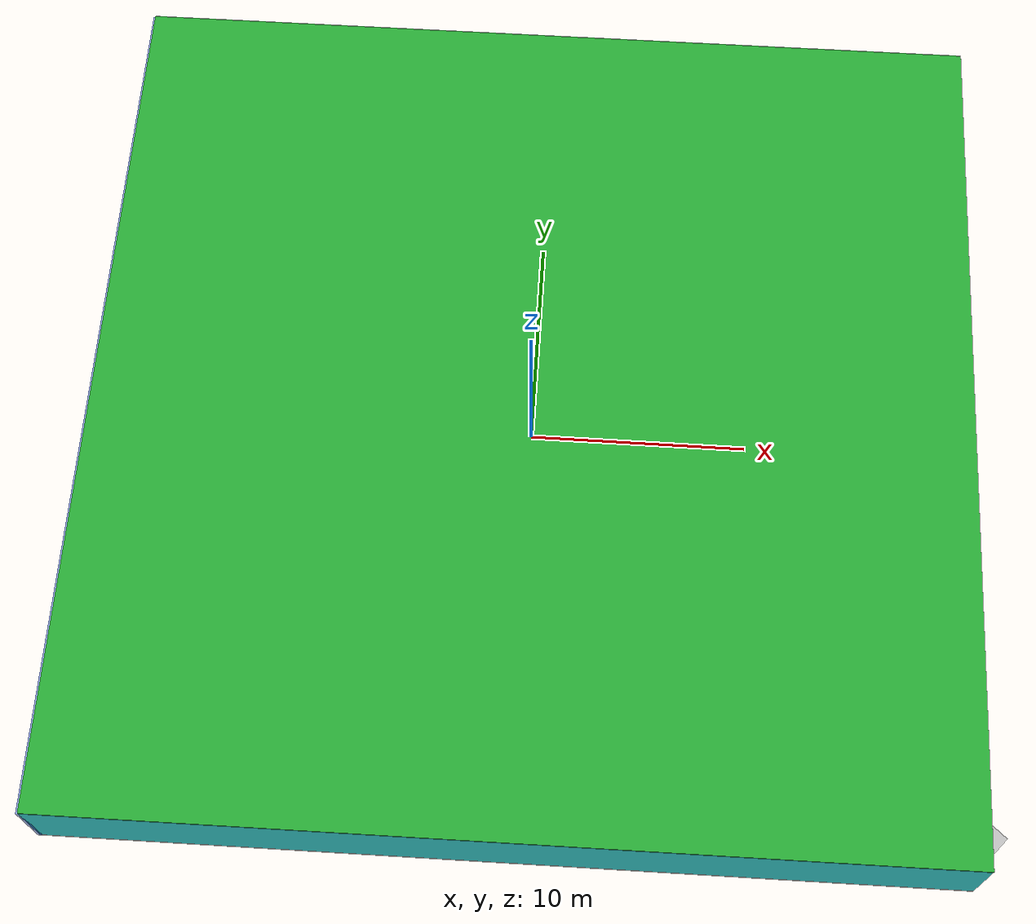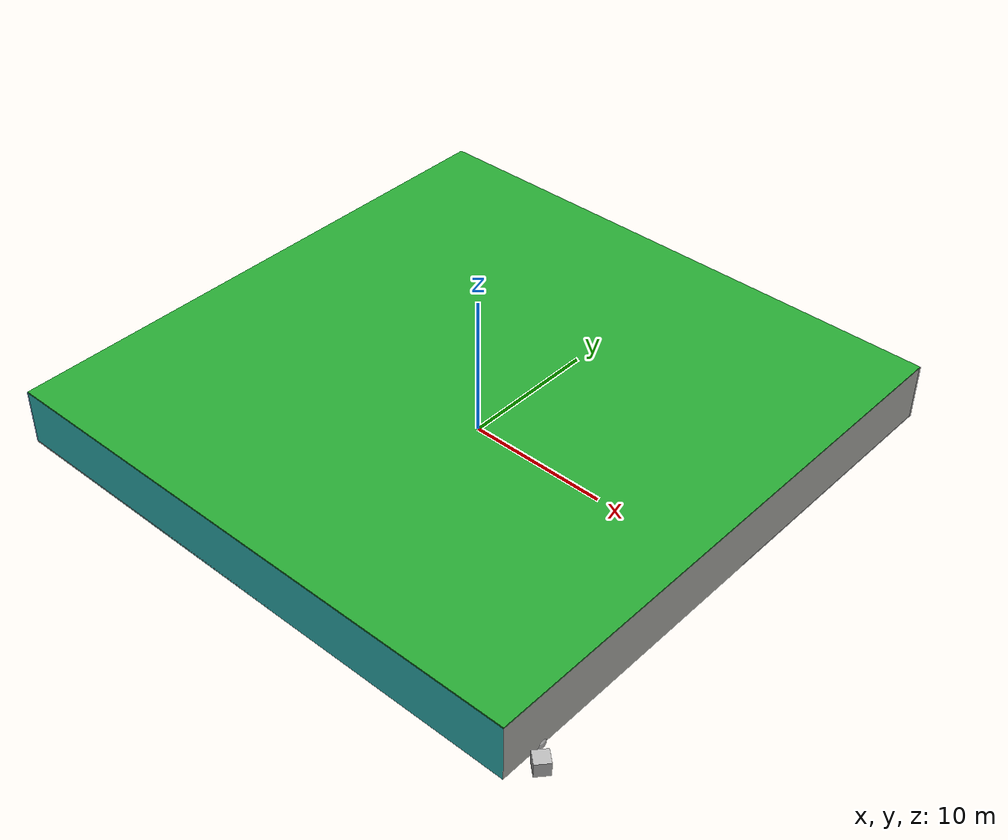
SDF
<sdf version="1.4">
 <world name="default">
  <physics type="ode">
   <max_step_size>0.001</max_step_size>
   <real_time_factor>1</real_time_factor>
   <real_time_update_rate>1000</real_time_update_rate>
   <gravity>0 0 -9.8</gravity>
  </physics>
  <scene><ambient>0.4 0.4 0.4 1</ambient><background>0.7 0.7 0.7 1</background><shadows>1</shadows></scene>
  <model name="Surrounding">
   <static>1</static>
   <link name="Ceiling">
    <collision name="Ceiling_Collision"><geometry><box><size>40 40 0.1</size></box></geometry></collision>
    <visual name="Ceiling_Visual">
     <geometry><box><size>40 40 0.1</size></box></geometry>
     <material>
      <script><uri>file://media/materials/scripts/gazebo.material</uri><name>Gazebo/GreenGlow</name></script>
     </material>
    </visual>
    <pose>0 0 4.05 0 0 0</pose>
   </link>
   <link name="Wall_South">
    <collision name="Wall_South_Collision">
     <geometry><box><size>40 0 4</size></box></geometry>
     <pose>0 0 2 0 -0 0</pose>
    </collision>
    <visual name="Wall_South_Visual">
     <pose>0 0 2 0 -0 0</pose>
     <geometry><box><size>40 0 4</size></box></geometry>
     <material>
      <script><uri>file://media/materials/scripts/gazebo.material</uri><name>Gazebo/TurquoiseGlow</name></script>
     </material>
    </visual>
    <velocity_decay><linear>0</linear><angular>0</angular></velocity_decay>
    <pose>0 -20 0 0 -0 0</pose>
   </link>
   <link name="Wall_East">
    <collision name="Wall_21_Collision">
     <geometry><box><size>40 0 4</size></box></geometry>
     <pose>0 0 2 0 -0 0</pose>
    </collision>
    <visual name="Wall_21_Visual">
     <pose>0 0 2 0 -0 0</pose>
     <geometry><box><size>40 0 4</size></box></geometry>
     <material>
      <script><uri>file://media/materials/scripts/gazebo.material</uri><name>Gazebo/CeilingTiled</name></script>
     </material>
    </visual>
    <velocity_decay><linear>0</linear><angular>0</angular></velocity_decay>
    <pose>20 0 0 0 -0 1.5708</pose>
   </link>
   <link name="Wall_North">
    <collision name="Wall_22_Collision">
     <geometry><box><size>40 0.2 4</size></box></geometry>
     <pose>0 0 2 0 -0 0</pose>
    </collision>
    <visual name="Wall_22_Visual">
     <pose>0 0 2 0 -0 0</pose>
     <geometry><box><size>40 0.2 4</size></box></geometry>
     <material>
      <script><uri>file://media/materials/scripts/gazebo.material</uri><name>Gazebo/LightOn</name></script>
     </material>
    </visual>
    <velocity_decay><linear>0</linear><angular>0</angular></velocity_decay>
    <pose>0 20 0 0 -0 0</pose>
   </link>
   <link name="Wall_West">
    <collision name="Wall_23_Collision">
     <geometry><box><size>40 0.2 4</size></box></geometry>
     <pose>0 0 2 0 -0 0</pose>
    </collision>
    <visual name="Wall_23_Visual">
     <pose>0 0 2 0 -0 0</pose>
     <geometry><box><size>40 0.2 4</size></box></geometry>
     <material>
      <script><uri>file://media/materials/scripts/gazebo.material</uri><name>Gazebo/BlueTransparent</name></script>
     </material>
    </visual>
    <velocity_decay><linear>0</linear><angular>0</angular></velocity_decay>
    <pose>-20 0 0 0 0 -1.5708</pose>
   </link>
   <link name="Ground_link">
    <collision name="collision">
     <pose>0 0 .05 0 -0 0</pose>
     <geometry><box><size>40 40 0.1</size></box></geometry>
    </collision>
    <visual name="visual">
     <pose>0 0 .05 0 -0 0</pose>
     <geometry><box><size>40 40 0.1</size></box></geometry>
     <material>
      <script><uri>file://media/materials/scripts/gazebo.material</uri><name>Gazebo/LightOn</name></script>
     </material>
    </visual>
   </link>
   <static>1</static>
  </model>
  <spherical_coordinates>
   <surface_model>EARTH_WGS84</surface_model>
   <latitude_deg>0</latitude_deg>
   <longitude_deg>0</longitude_deg>
   <elevation>0</elevation>
   <heading_deg>0</heading_deg>
  </spherical_coordinates>
  <light name="lightball_0" type="diffuse">
   <diffuse>0.8 0.8 0.8 1</diffuse>
   <specular>0.2 0.2 0.2 1</specular>
   <attenuation>
    <range>100</range>
    <constant>0.7</constant>
    <linear>0.01</linear>
    <quadratic>0.001</quadratic>
   </attenuation>
   <direction>-0.5 0.1 -0.9</direction>
   <pose>-0.928963734945 4.05083957706 1.43653386004 0 0 0</pose>
  </light>
  <light name="lightball_1" type="diffuse">
   <diffuse>0.8 0.8 0.8 1</diffuse>
   <specular>0.2 0.2 0.2 1</specular>
   <attenuation>
    <range>100</range>
    <constant>0.7</constant>
    <linear>0.01</linear>
    <quadratic>0.001</quadratic>
   </attenuation>
   <direction>-0.5 0.1 -0.9</direction>
   <pose>-4.28652812621 -1.21043989846 3.00096031355 0 0 0</pose>
  </light>
  <light name="lightball_2" type="diffuse">
   <diffuse>0.8 0.8 0.8 1</diffuse>
   <specular>0.2 0.2 0.2 1</specular>
   <attenuation>
    <range>100</range>
    <constant>0.7</constant>
    <linear>0.01</linear>
    <quadratic>0.001</quadratic>
   </attenuation>
   <direction>-0.5 0.1 -0.9</direction>
   <pose>-7.02144106048 -13.8214058455 3.72061244029 0 0 0</pose>
  </light>
  <light name="lightball_3" type="diffuse">
   <diffuse>0.8 0.8 0.8 1</diffuse>
   <specular>0.2 0.2 0.2 1</specular>
   <attenuation>
    <range>100</range>
    <constant>0.7</constant>
    <linear>0.01</linear>
    <quadratic>0.001</quadratic>
   </attenuation>
   <direction>-0.5 0.1 -0.9</direction>
   <pose>8.30585353246 3.94989068416 3.57160252998 0 0 0</pose>
  </light>
  <light name="lightball_4" type="diffuse">
   <diffuse>0.8 0.8 0.8 1</diffuse>
   <specular>0.2 0.2 0.2 1</specular>
   <attenuation>
    <range>100</range>
    <constant>0.7</constant>
    <linear>0.01</linear>
    <quadratic>0.001</quadratic>
   </attenuation>
   <direction>-0.5 0.1 -0.9</direction>
   <pose>-15.3870240045 10.26084256 0.623938891332 0 0 0</pose>
  </light>
  <light name="lightball_5" type="diffuse">
   <diffuse>0.8 0.8 0.8 1</diffuse>
   <specular>0.2 0.2 0.2 1</specular>
   <attenuation>
    <range>100</range>
    <constant>0.7</constant>
    <linear>0.01</linear>
    <quadratic>0.001</quadratic>
   </attenuation>
   <direction>-0.5 0.1 -0.9</direction>
   <pose>14.3011812826 14.245113679 2.76135369303 0 0 0</pose>
  </light>
  <light name="lightball_6" type="diffuse">
   <diffuse>0.8 0.8 0.8 1</diffuse>
   <specular>0.2 0.2 0.2 1</specular>
   <attenuation>
    <range>100</range>
    <constant>0.7</constant>
    <linear>0.01</linear>
    <quadratic>0.001</quadratic>
   </attenuation>
   <direction>-0.5 0.1 -0.9</direction>
   <pose>4.25290771122 15.9564674935 0.806893531783 0 0 0</pose>
  </light>
  <include>
   <uri>model://textured_shapes</uri>
   <pose>-18.243618668 6.75510101259 0 0 0 0.0450655692562</pose>
  </include>
  <include><uri>model://cabinet</uri><pose>-18.422397696 11.720452173 0 0 0 0.4929197174</pose></include>
  <include><uri>model://cabinet</uri><pose>-14.4640967318 -17.502061114 0 0 0 1.84250432683</pose></include>
  <include><uri>model://cabinet</uri><pose>-12.1172469469 -9.0190898304 0 0 0 1.6972752183</pose></include>
  <include><uri>model://table</uri><pose>-7.53143964813 -9.26349138986 0 0 0 0.859168282427</pose></include>
  <include>
   <uri>model://textured_shapes</uri>
   <pose>-5.7900885237 -15.361024126 0 0 0 2.71918279312</pose>
  </include>
  <include>
   <uri>model://robocup_3Dsim_goal</uri>
   <pose>-5.07485743438 0.529910497343 0 0 0 1.67070003035</pose>
  </include>
  <include><uri>model://cabinet</uri><pose>-6.13148657674 3.88711795827 0 0 0 0.538184589015</pose></include>
  <include>
   <uri>model://textured_shapes</uri>
   <pose>-3.49375146529 -10.7135233123 0 0 0 1.49822704934</pose>
  </include>
  <include><uri>model://cabinet</uri><pose>-2.23695934911 0.414928741456 0 0 0 1.47823479593</pose></include>
  <include><uri>model://table</uri><pose>1.52241646928 3.65608890353 0 0 0 1.73037158363</pose></include>
  <include><uri>model://table</uri><pose>0.463074963361 9.68223585232 0 0 0 2.55282130735</pose></include>
  <include><uri>model://table</uri><pose>-0.171662265333 15.1063550818 0 0 0 2.69733727437</pose></include>
  <include><uri>model://cabinet</uri><pose>6.94363591704 -4.5958130122 0 0 0 1.84479363749</pose></include>
  <include>
   <uri>model://robocup_3Dsim_goal</uri>
   <pose>5.91139495459 -1.5696167092 0 0 0 2.69648900184</pose>
  </include>
  <include>
   <uri>model://construction_cone</uri>
   <pose>6.97624133587 1.31338839092 0 0 0 2.516144869</pose>
  </include>
  <include>
   <uri>model://construction_cone</uri>
   <pose>7.04106519753 2.76252110652 0 0 0 0.921263667347</pose>
  </include>
  <include><uri>model://table</uri><pose>9.16616493685 -18.3236834318 0 0 0 0.279992431786</pose></include>
  <include><uri>model://cabinet</uri><pose>10.1227911509 -5.15658179975 0 0 0 0.565893975185</pose></include>
  <include>
   <uri>model://construction_cone</uri>
   <pose>12.8398132332 -13.3446622636 0 0 0 1.49886396613</pose>
  </include>
  <include>
   <uri>model://construction_cone</uri>
   <pose>11.7312613591 -9.09759740056 0 0 0 1.49404729486</pose>
  </include>
  <include><uri>model://table</uri><pose>13.1799174303 0.789423553557 0 0 0 2.34727993745</pose></include>
  <include><uri>model://cabinet</uri><pose>16.1509448523 -17.2739071622 0 0 0 0.877989118146</pose></include>
  <include><uri>model://cabinet</uri><pose>16.0420928271 6.11590223328 0 0 0 1.88829273632</pose></include>
  <include><uri>model://cabinet</uri><pose>15.1922413616 15.1636711893 0 0 0 2.04761001763</pose></include>
  <include>
   <uri>model://textured_shapes</uri>
   <pose>19.6163926509 -16.8475027505 0 0 0 0.853610746933</pose>
  </include>
  <include>
   <uri>model://construction_cone</uri>
   <pose>18.4876024283 -11.2880732749 0 0 0 1.23348534892</pose>
  </include>
  <include>
   <uri>model://construction_cone</uri>
   <pose>18.9525320709 -5.44902609079 0 0 0 1.2201054821</pose>
  </include>
  <include><uri>model://cabinet</uri><pose>19.146953831 13.6092581121 0 0 0 0.680106519941</pose></include>
 </world>
</sdf>

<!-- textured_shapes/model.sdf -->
<sdf version="1.6">
  <model name="textured_shapes">
    <pose>0 0 0.5 0 0 0</pose>
    <link name="box">
      <pose>0 -1.5 0 0 0 0</pose>
      <collision name="collision">
        <geometry>
          <box>
            <size>1 1 1</size>
          </box>
        </geometry>
      </collision>
      <visual name="visual">
        <geometry>
          <box>
            <size>1 1 1</size>
          </box>
        </geometry>
        <material>
          <script>
            <uri>model://../model_source/models/textured_shapes/materials/scripts</uri>
            <uri>model://../model_source/models/textured_shapes/materials/textures</uri>
            <name>TexturedShape/Squares</name>
          </script>
        </material>
      </visual>
    </link>
    <link name="sphere">
      <collision name="collision">
        <geometry>
          <sphere>
            <radius>0.5</radius>
          </sphere>
        </geometry>
      </collision>
      <visual name="visual">
        <geometry>
          <sphere>
            <radius>0.5</radius>
          </sphere>
        </geometry>
        <material>
          <script>
            <uri>model://../model_source/models/textured_shapes/materials/scripts</uri>
            <uri>model://../model_source/models/textured_shapes/materials/textures</uri>
            <name>TexturedShape/Squares</name>
          </script>
        </material>
      </visual>
    </link>
    <link name="cylinder">
      <pose>0 1.5 0 0 0 0</pose>
      <collision name="collision">
        <geometry>
          <cylinder>
            <radius>0.5</radius>
            <length>1</length>
          </cylinder>
        </geometry>
      </collision>
      <visual name="visual">
        <geometry>
          <cylinder>
            <radius>0.5</radius>
            <length>1</length>
          </cylinder>
        </geometry>
        <material>
          <script>
            <uri>model://../model_source/models/textured_shapes/materials/scripts</uri>
            <uri>model://../model_source/models/textured_shapes/materials/textures</uri>
            <name>TexturedShape/Squares</name>
          </script>
        </material>
      </visual>
    </link>
  </model>
</sdf>

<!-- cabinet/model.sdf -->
<sdf version="1.5">
  <model name="cabinet">
    <static>true</static>
    <link name="cabinet_bottom_plate">
      <inertial>
        <pose>0 0 -1 0 0 0</pose>
        <inertia>
          <ixx>2.050000</ixx>
          <ixy>0</ixy>
          <ixz>0</ixz>
          <iyy>2.050000</iyy>
          <iyz>0</iyz>
          <izz>2.050000</izz>
        </inertia>
        <mass>25.000000</mass>
      </inertial>
      <collision name="cabinet_bottom_plate_geom">
        <pose>0 0 0.010000 0 0 0</pose>
        <geometry>
          <box>
            <size>0.450000 0.450000 0.020000</size>
          </box>
        </geometry>
      </collision>
      <visual name="cabinet_bottom_plate_geom_visual">
        <pose>0 0 0.010000 0 0 0</pose>
        <geometry>
          <box>
            <size>0.450000 0.450000 0.020000</size>
          </box>
        </geometry>
        <material>
          <script>
            <uri>model://media/materials/scripts/gazebo.material</uri>
            <name>Gazebo/Wood</name>
          </script>
        </material>
      </visual>
      <collision name="cabinet_bottom_plate_geom_cabinet_back_plate">
        <pose>0.235000 0 0.510000 0 0 0</pose>
        <geometry>
          <box>
            <size>0.020000 0.450000 1.020000</size>
          </box>
        </geometry>
      </collision>
      <visual name="cabinet_bottom_plate_geom_cabinet_back_plate_visual">
        <pose>0.235000 0 0.510000 0 0 0</pose>
        <geometry>
          <box>
            <size>0.020000 0.450000 1.020000</size>
          </box>
        </geometry>
        <material>
          <script>
            <uri>model://media/materials/scripts/gazebo.material</uri>
            <name>Gazebo/Wood</name>
          </script>
        </material>
      </visual>
      <collision name="cabinet_bottom_plate_geom_cabinet_left_plate">
        <pose>0 0.235000 0.510000 0 0 0</pose>
        <geometry>
          <box>
            <size>0.450000 0.020000 1.020000</size>
          </box>
        </geometry>
      </collision>
      <visual name="cabinet_bottom_plate_geom_cabinet_left_plate_visual">
        <pose>0 0.235000 0.510000 0 0 0</pose>
        <geometry>
          <box>
            <size>0.450000 0.020000 1.020000</size>
          </box>
        </geometry>
        <material>
          <script>
            <uri>model://media/materials/scripts/gazebo.material</uri>
            <name>Gazebo/Wood</name>
          </script>
        </material>
      </visual>
      <collision name="cabinet_bottom_plate_geom_cabinet_middle_plate">
        <pose>0 0 0.510000 0 0 0</pose>
        <geometry>
          <box>
            <size>0.450000 0.450000 0.020000</size>
          </box>
        </geometry>
      </collision>
      <visual name="cabinet_bottom_plate_geom_cabinet_middle_plate_visual">
        <pose>0 0 0.510000 0 0 0</pose>
        <geometry>
          <box>
            <size>0.450000 0.450000 0.020000</size>
          </box>
        </geometry>
        <material>
          <script>
            <uri>model://media/materials/scripts/gazebo.material</uri>
            <name>Gazebo/Wood</name>
          </script>
        </material>
      </visual>
      <collision name="cabinet_bottom_plate_geom_cabinet_right_plate">
        <pose>0 -0.235000 0.510000 0 0 0</pose>
        <geometry>
          <box>
            <size>0.450000 0.020000 1.020000</size>
          </box>
        </geometry>
      </collision>
      <visual name="cabinet_bottom_plate_geom_cabinet_right_plate_visual">
        <pose>0 -0.235000 0.510000 0 0 0</pose>
        <geometry>
          <box>
            <size>0.450000 0.020000 1.020000</size>
          </box>
        </geometry>
        <material>
          <script>
            <uri>model://media/materials/scripts/gazebo.material</uri>
            <name>Gazebo/Wood</name>
          </script>
        </material>
      </visual>
      <collision name="cabinet_bottom_plate_geom_cabinet_top_plate">
        <pose>0 0 1.010000 0 0 0</pose>
        <geometry>
          <box>
            <size>0.450000 0.450000 0.020000</size>
          </box>
        </geometry>
      </collision>
      <visual name="cabinet_bottom_plate_geom_cabinet_top_plate_visual">
        <pose>0 0 1.010000 0 0 0</pose>
        <geometry>
          <box>
            <size>0.450000 0.450000 0.020000</size>
          </box>
        </geometry>
        <material>
          <script>
            <uri>model://media/materials/scripts/gazebo.material</uri>
            <name>Gazebo/Wood</name>
          </script>
        </material>
      </visual>
    </link>
  </model>
</sdf>

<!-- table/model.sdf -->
<sdf version="1.5">
  <model name="table">
    <static>true</static>
    <link name="link">
      <collision name="surface">
        <pose>0 0 1.0 0 0 0</pose>
        <geometry>
          <box>
            <size>1.5 0.8 0.03</size>
          </box>
        </geometry>
        <surface>
          <friction>
            <ode>
              <mu>0.6</mu>
              <mu2>0.6</mu2>
            </ode>
          </friction>
        </surface>
      </collision>
      <visual name="visual1">
        <pose>0 0 1.0 0 0 0</pose>
        <geometry>
          <box>
            <size>1.5 0.8 0.03</size>
          </box>
        </geometry>
        <material>
          <script>
            <uri>model://media/materials/scripts/gazebo.material</uri>
            <name>Gazebo/Wood</name>
          </script>
        </material>
      </visual>
      <collision name="front_left_leg">
        <pose>0.68 0.38 0.5 0 0 0</pose>
        <geometry>
          <cylinder>
            <radius>0.02</radius>
            <length>1.0</length>
          </cylinder>
        </geometry>
      </collision>
      <visual name="front_left_leg">
        <pose>0.68 0.38 0.5 0 0 0</pose>
        <geometry>
          <cylinder>
            <radius>0.02</radius>
            <length>1.0</length>
          </cylinder>
        </geometry>
        <material>
          <script>
            <uri>model://media/materials/scripts/gazebo.material</uri>
            <name>Gazebo/Grey</name>
          </script>
        </material>
      </visual>
      <collision name="front_right_leg">
        <pose>0.68 -0.38 0.5 0 0 0</pose>
        <geometry>
          <cylinder>
            <radius>0.02</radius>
            <length>1.0</length>
          </cylinder>
        </geometry>
      </collision>
      <visual name="front_right_leg">
        <pose>0.68 -0.38 0.5 0 0 0</pose>
        <geometry>
          <cylinder>
            <radius>0.02</radius>
            <length>1.0</length>
          </cylinder>
        </geometry>
        <material>
          <script>
            <uri>model://media/materials/scripts/gazebo.material</uri>
            <name>Gazebo/Grey</name>
          </script>
        </material>
      </visual>
      <collision name="back_right_leg">
        <pose>-0.68 -0.38 0.5 0 0 0</pose>
        <geometry>
          <cylinder>
            <radius>0.02</radius>
            <length>1.0</length>
          </cylinder>
        </geometry>
      </collision>
      <visual name="back_right_leg">
        <pose>-0.68 -0.38 0.5 0 0 0</pose>
        <geometry>
          <cylinder>
            <radius>0.02</radius>
            <length>1.0</length>
          </cylinder>
        </geometry>
        <material>
          <script>
            <uri>model://media/materials/scripts/gazebo.material</uri>
            <name>Gazebo/Grey</name>
          </script>
        </material>
      </visual>
      <collision name="back_left_leg">
        <pose>-0.68 0.38 0.5 0 0 0</pose>
        <geometry>
          <cylinder>
            <radius>0.02</radius>
            <length>1.0</length>
          </cylinder>
        </geometry>
      </collision>
      <visual name="back_left_leg">
        <pose>-0.68 0.38 0.5 0 0 0</pose>
        <geometry>
          <cylinder>
            <radius>0.02</radius>
            <length>1.0</length>
          </cylinder>
        </geometry>
        <material>
          <script>
            <uri>model://media/materials/scripts/gazebo.material</uri>
            <name>Gazebo/Grey</name>
          </script>
        </material>
      </visual>
    </link>
  </model>
</sdf>

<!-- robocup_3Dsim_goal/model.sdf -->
<sdf version="1.5">
  <model name="robocup_3d_goal">
    <static>true</static>
    <link name="left_post">
      <pose>0 1.05 0.45 0 0 0</pose>
      <collision name="collision">
        <geometry>
          <cylinder>
            <radius>0.05</radius>
            <length>0.9</length>
          </cylinder>
        </geometry>
      </collision>
      <visual name="visual">
        <geometry>
          <cylinder>
            <radius>0.05</radius>
            <length>0.9</length>
          </cylinder>
        </geometry>
        <material>
          <script>
            <uri>file://media/materials/scripts/gazebo.material</uri>
            <name>Gazebo/ZincYellow</name>
          </script>
        </material>
      </visual>
    </link>
    <link name="left_support_horiz_lower">
      <pose>0.30 1.05 0.01 0 0 0</pose>
      <collision name="collision">
        <geometry>
          <box>
            <size>0.50 0.02 0.02</size>
          </box>
        </geometry>
      </collision>
      <visual name="visual">
        <geometry>
          <box>
            <size>0.50 0.02 0.02</size>
          </box>
        </geometry>
        <material>
          <script>
            <uri>file://media/materials/scripts/gazebo.material</uri>
            <name>Gazebo/White</name>
          </script>
        </material>
      </visual>
    </link>
    <link name="left_support_horiz_upper">
      <pose>0.30 1.05 0.79 0 0 0</pose>
      <collision name="collision">
        <geometry>
          <box>
            <size>0.50 0.02 0.02</size>
          </box>
        </geometry>
      </collision>
      <visual name="visual">
        <geometry>
          <box>
            <size>0.50 0.02 0.02</size>
          </box>
        </geometry>
        <material>
          <script>
            <uri>file://media/materials/scripts/gazebo.material</uri>
            <name>Gazebo/White</name>
          </script>
        </material>
      </visual>
    </link>
    <link name="left_support_vertical">
      <pose>0.56 1.05 0.4 0 1.5708 0</pose>
      <collision name="collision">
        <geometry>
          <box>
            <size>0.80 0.02 0.02</size>
          </box>
        </geometry>
      </collision>
      <visual name="visual">
        <geometry>
          <box>
            <size>0.80 0.02 0.02</size>
          </box>
        </geometry>
        <material>
          <script>
            <uri>file://media/materials/scripts/gazebo.material</uri>
            <name>Gazebo/White</name>
          </script>
        </material>
      </visual>
    </link>
    <link name="right_support_horiz_lower">
      <pose>0.30 -1.05 0.01 0 0 0</pose>
      <collision name="collision">
        <geometry>
          <box>
            <size>0.50 0.02 0.02</size>
          </box>
        </geometry>
      </collision>
      <visual name="visual">
        <geometry>
          <box>
            <size>0.50 0.02 0.02</size>
          </box>
        </geometry>
        <material>
          <script>
            <uri>file://media/materials/scripts/gazebo.material</uri>
            <name>Gazebo/White</name>
          </script>
        </material>
      </visual>
    </link>
    <link name="right_support_horiz_upper">
      <pose>0.30 -1.05 0.79 0 0 0</pose>
      <collision name="collision">
        <geometry>
          <box>
            <size>0.50 0.02 0.02</size>
          </box>
        </geometry>
      </collision>
      <visual name="visual">
        <geometry>
          <box>
            <size>0.50 0.02 0.02</size>
          </box>
        </geometry>
        <material>
          <script>
            <uri>file://media/materials/scripts/gazebo.material</uri>
            <name>Gazebo/White</name>
          </script>
        </material>
      </visual>
    </link>
    <link name="right_support_vertical">
      <pose>0.56 -1.05 0.4 0 1.5708 0</pose>
      <collision name="collision">
        <geometry>
          <box>
            <size>0.80 0.02 0.02</size>
          </box>
        </geometry>
      </collision>
      <visual name="visual">
        <geometry>
          <box>
            <size>0.80 0.02 0.02</size>
          </box>
        </geometry>
        <material>
          <script>
            <uri>file://media/materials/scripts/gazebo.material</uri>
            <name>Gazebo/White</name>
          </script>
        </material>
      </visual>
    </link>
    <link name="center_support_horiz_lower">
      <pose>0.56 0 0.01 0 1.5708 0</pose>
      <collision name="collision">
        <geometry>
          <box>
            <size>0.02 2.08 0.02</size>
          </box>
        </geometry>
      </collision>
      <visual name="visual">
        <geometry>
          <box>
            <size>0.02 2.08 0.02</size>
          </box>
        </geometry>
        <material>
          <script>
            <uri>file://media/materials/scripts/gazebo.material</uri>
            <name>Gazebo/White</name>
          </script>
        </material>
      </visual>
    </link>
    <link name="center_support_horiz_upper">
      <pose>0.56 0 0.79 0 1.5708 0</pose>
      <collision name="collision">
        <geometry>
          <box>
            <size>0.02 2.08 0.02</size>
          </box>
        </geometry>
      </collision>
      <visual name="visual">
        <geometry>
          <box>
            <size>0.02 2.08 0.02</size>
          </box>
        </geometry>
        <material>
          <script>
            <uri>file://media/materials/scripts/gazebo.material</uri>
            <name>Gazebo/White</name>
          </script>
        </material>
      </visual>
    </link>
    <link name="right_post">
      <pose>0 -1.05 0.45 0 0 0</pose>
      <collision name="collision">
        <geometry>
          <cylinder>
            <radius>0.05</radius>
            <length>0.9</length>
          </cylinder>
        </geometry>
      </collision>
      <visual name="visual">
        <geometry>
          <cylinder>
            <radius>0.05</radius>
            <length>0.9</length>
          </cylinder>
        </geometry>
        <material>
          <script>
            <uri>file://media/materials/scripts/gazebo.material</uri>
            <name>Gazebo/ZincYellow</name>
          </script>
        </material>
      </visual>
    </link>
    <link name="crossbar">
      <pose>0 0 0.85 1.57 1.57 0</pose>
      <collision name="collision">
        <geometry>
          <cylinder>
            <radius>0.05</radius>
            <length>2.0</length>
          </cylinder>
        </geometry>
      </collision>
      <visual name="visual">
        <geometry>
          <cylinder>
            <radius>0.05</radius>
            <length>2.0</length>
          </cylinder>
        </geometry>
        <material>
          <script>
            <uri>file://media/materials/scripts/gazebo.material</uri>
            <name>Gazebo/ZincYellow</name>
          </script>
        </material>
      </visual>
    </link>
    <link name="center_net">
      <pose>0.56 0 0.40 0 0 0</pose>
      <collision name="collision">
        <geometry>
          <box>
            <size>0.01 2.1 0.80</size>
          </box>
        </geometry>
      </collision>
      <visual name="visual">
        <geometry>
          <box>
            <size>0.01 2.1 0.80</size>
          </box>
        </geometry>
        <material>
          <script>
            <uri>model://../model_source/models/robocup09_spl_field/materials/scripts/</uri>
            <uri>model://../model_source/models/robocup09_spl_field/materials/textures/</uri>
            <name>RoboCup/Net</name>
          </script>
        </material>
      </visual>
    </link>
    <link name="left_net">
      <pose>0.30 1.05 0.40 0 0 0</pose>
      <collision name="collision">
        <geometry>
          <box>
            <size>0.50 0.01 0.76</size>
          </box>
        </geometry>
      </collision>
      <visual name="visual">
        <geometry>
          <box>
            <size>0.50 0.01 0.76</size>
          </box>
        </geometry>
        <material>
          <script>
            <uri>model://../model_source/models/robocup09_spl_field/materials/scripts/</uri>
            <uri>model://../model_source/models/robocup09_spl_field/materials/textures/</uri>
            <name>RoboCup/Net</name>
          </script>
        </material>
      </visual>
    </link>
    <link name="right_net">
      <pose>0.30 -1.05 0.40 0 0 0</pose>
      <collision name="collision">
        <geometry>
          <box>
            <size>0.50 0.01 0.76</size>
          </box>
        </geometry>
      </collision>
      <visual name="visual">
        <geometry>
          <box>
            <size>0.50 0.01 0.76</size>
          </box>
        </geometry>
        <material>
          <script>
            <uri>model://../model_source/models/robocup09_spl_field/materials/scripts/</uri>
            <uri>model://../model_source/models/robocup09_spl_field/materials/textures/</uri>
            <name>RoboCup/Net</name>
          </script>
        </material>
      </visual>
    </link>
  </model>
</sdf>

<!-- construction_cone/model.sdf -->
<sdf version="1.5">
  <model name="Construction Cone">
    <link name="link">
      <collision name="collision">
        <geometry>
          <mesh>
            <scale>10 10 10</scale>
            <uri>file://isr-testbed/construction_cone/meshes/construction_cone.dae</uri>
          </mesh>
        </geometry>
      </collision>
      <visual name="visual">
        <geometry>
          <mesh>
            <scale>10 10 10</scale>
            <uri>file://isr-testbed/construction_cone/meshes/construction_cone.dae</uri>
          </mesh>
        </geometry>
      </visual>
    </link>
  </model>
</sdf>
